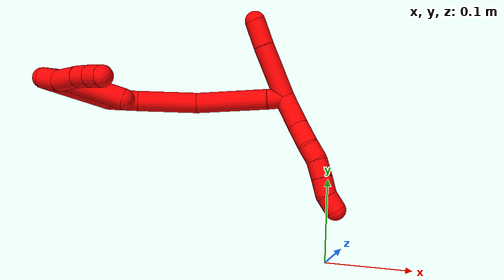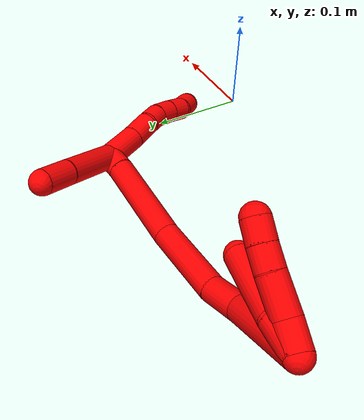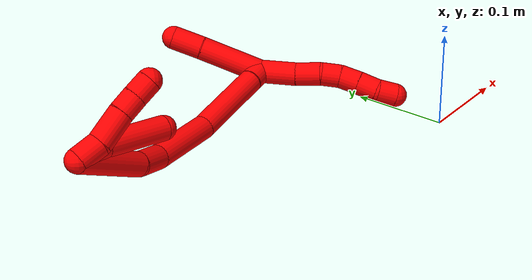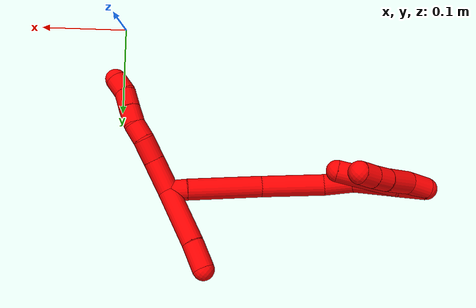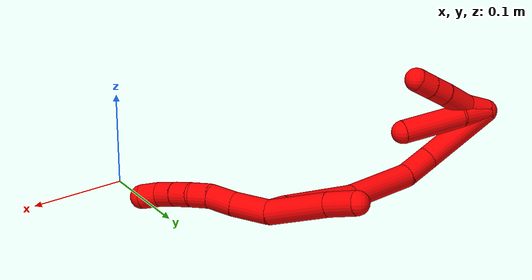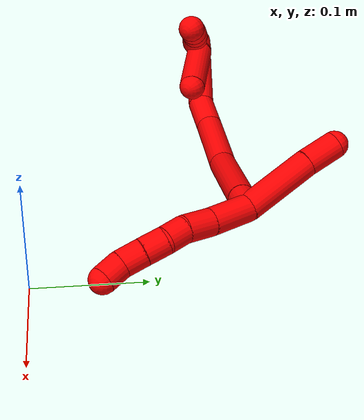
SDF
<sdf version="1.7">
 <world name="default">
  <model name="2">
   <static>0</static>
   <link name="2">
    <collision name="collision-cylinder-e_1_2_8">
     <pose>-0.006139 0.004583 -0.018216 -2.89512 -0.31589 1.81962</pose>
     <geometry><cylinder><radius>0.0125</radius><length>0.039522</length></cylinder></geometry>
     <surface>
      <friction><ode><mu>1.16</mu><mu2>1.16</mu2><slip1>0</slip1><slip2>0</slip2></ode></friction>
      <contact><ode><kp>1e+06</kp><kd>1</kd><max_vel>0</max_vel><min_depth>0.001</min_depth></ode></contact>
     </surface>
    </collision>
    <visual name="visual-cylinder-e_1_2_8">
     <pose>-0.006139 0.004583 -0.018216 -2.89512 -0.31589 1.81962</pose>
     <geometry><cylinder><radius>0.0125</radius><length>0.039522</length></cylinder></geometry>
     <material><ambient>1 0 0 1</ambient></material>
    </visual>
    <collision name="collision-cylinder-e_2_8_9">
     <pose>-0.01734 0.011184 -0.048871 -2.98071 -0.381958 2.35147</pose>
     <geometry><cylinder><radius>0.0125</radius><length>0.027163</length></cylinder></geometry>
     <surface>
      <friction><ode><mu>1.16</mu><mu2>1.16</mu2><slip1>0</slip1><slip2>0</slip2></ode></friction>
      <contact><ode><kp>1e+06</kp><kd>1</kd><max_vel>0</max_vel><min_depth>0.001</min_depth></ode></contact>
     </surface>
    </collision>
    <visual name="visual-cylinder-e_2_8_9">
     <pose>-0.01734 0.011184 -0.048871 -2.98071 -0.381958 2.35147</pose>
     <geometry><cylinder><radius>0.0125</radius><length>0.027163</length></cylinder></geometry>
     <material><ambient>1 0 0 1</ambient></material>
    </visual>
    <collision name="collision-cylinder-e_3_9_10">
     <pose>-0.024109 0.015788 -0.071044 -2.88204 -0.167821 1.14495</pose>
     <geometry><cylinder><radius>0.0125</radius><length>0.020426</length></cylinder></geometry>
     <surface>
      <friction><ode><mu>1.16</mu><mu2>1.16</mu2><slip1>0</slip1><slip2>0</slip2></ode></friction>
      <contact><ode><kp>1e+06</kp><kd>1</kd><max_vel>0</max_vel><min_depth>0.001</min_depth></ode></contact>
     </surface>
    </collision>
    <visual name="visual-cylinder-e_3_9_10">
     <pose>-0.024109 0.015788 -0.071044 -2.88204 -0.167821 1.14495</pose>
     <geometry><cylinder><radius>0.0125</radius><length>0.020426</length></cylinder></geometry>
     <material><ambient>1 0 0 1</ambient></material>
    </visual>
    <collision name="collision-cylinder-e_4_10_11">
     <pose>-0.028305 0.023386 -0.089693 -2.62938 -0.238748 0.859065</pose>
     <geometry><cylinder><radius>0.0125</radius><length>0.021058</length></cylinder></geometry>
     <surface>
      <friction><ode><mu>1.16</mu><mu2>1.16</mu2><slip1>0</slip1><slip2>0</slip2></ode></friction>
      <contact><ode><kp>1e+06</kp><kd>1</kd><max_vel>0</max_vel><min_depth>0.001</min_depth></ode></contact>
     </surface>
    </collision>
    <visual name="visual-cylinder-e_4_10_11">
     <pose>-0.028305 0.023386 -0.089693 -2.62938 -0.238748 0.859065</pose>
     <geometry><cylinder><radius>0.0125</radius><length>0.021058</length></cylinder></geometry>
     <material><ambient>1 0 0 1</ambient></material>
    </visual>
    <collision name="collision-cylinder-e_5_11_12">
     <pose>-0.033191 0.033938 -0.107368 -2.57771 -0.22729 0.750711</pose>
     <geometry><cylinder><radius>0.0125</radius><length>0.02127</length></cylinder></geometry>
     <surface>
      <friction><ode><mu>1.16</mu><mu2>1.16</mu2><slip1>0</slip1><slip2>0</slip2></ode></friction>
      <contact><ode><kp>1e+06</kp><kd>1</kd><max_vel>0</max_vel><min_depth>0.001</min_depth></ode></contact>
     </surface>
    </collision>
    <visual name="visual-cylinder-e_5_11_12">
     <pose>-0.033191 0.033938 -0.107368 -2.57771 -0.22729 0.750711</pose>
     <geometry><cylinder><radius>0.0125</radius><length>0.02127</length></cylinder></geometry>
     <material><ambient>1 0 0 1</ambient></material>
    </visual>
    <collision name="collision-cylinder-e_6_12_6">
     <pose>-0.035614 0.042862 -0.125832 -2.80595 -0.002583 0.015249</pose>
     <geometry><cylinder><radius>0.0125</radius><length>0.020561</length></cylinder></geometry>
     <surface>
      <friction><ode><mu>1.16</mu><mu2>1.16</mu2><slip1>0</slip1><slip2>0</slip2></ode></friction>
      <contact><ode><kp>1e+06</kp><kd>1</kd><max_vel>0</max_vel><min_depth>0.001</min_depth></ode></contact>
     </surface>
    </collision>
    <visual name="visual-cylinder-e_6_12_6">
     <pose>-0.035614 0.042862 -0.125832 -2.80595 -0.002583 0.015249</pose>
     <geometry><cylinder><radius>0.0125</radius><length>0.020561</length></cylinder></geometry>
     <material><ambient>1 0 0 1</ambient></material>
    </visual>
    <collision name="collision-cylinder-e_1_2_13">
     <pose>0.002562 -0.016148 0.029687 0.498183 0.075655 0.019253</pose>
     <geometry><cylinder><radius>0.0125</radius><length>0.067784</length></cylinder></geometry>
     <surface>
      <friction><ode><mu>1.16</mu><mu2>1.16</mu2><slip1>0</slip1><slip2>0</slip2></ode></friction>
      <contact><ode><kp>1e+06</kp><kd>1</kd><max_vel>0</max_vel><min_depth>0.001</min_depth></ode></contact>
     </surface>
    </collision>
    <visual name="visual-cylinder-e_1_2_13">
     <pose>0.002562 -0.016148 0.029687 0.498183 0.075655 0.019253</pose>
     <geometry><cylinder><radius>0.0125</radius><length>0.067784</length></cylinder></geometry>
     <material><ambient>1 0 0 1</ambient></material>
    </visual>
    <collision name="collision-cylinder-e_2_13_5">
     <pose>0.007592 -0.039866 0.073377 0.495562 0.153854 0.038994</pose>
     <geometry><cylinder><radius>0.0125</radius><length>0.032216</length></cylinder></geometry>
     <surface>
      <friction><ode><mu>1.16</mu><mu2>1.16</mu2><slip1>0</slip1><slip2>0</slip2></ode></friction>
      <contact><ode><kp>1e+06</kp><kd>1</kd><max_vel>0</max_vel><min_depth>0.001</min_depth></ode></contact>
     </surface>
    </collision>
    <visual name="visual-cylinder-e_2_13_5">
     <pose>0.007592 -0.039866 0.073377 0.495562 0.153854 0.038994</pose>
     <geometry><cylinder><radius>0.0125</radius><length>0.032216</length></cylinder></geometry>
     <material><ambient>1 0 0 1</ambient></material>
    </visual>
    <collision name="collision-cylinder-e_1_2_14">
     <pose>-0.005236 0.005671 0.007046 -0.677743 -0.524761 0.188764</pose>
     <geometry><cylinder><radius>0.0125</radius><length>0.020901</length></cylinder></geometry>
     <surface>
      <friction><ode><mu>1.16</mu><mu2>1.16</mu2><slip1>0</slip1><slip2>0</slip2></ode></friction>
      <contact><ode><kp>1e+06</kp><kd>1</kd><max_vel>0</max_vel><min_depth>0.001</min_depth></ode></contact>
     </surface>
    </collision>
    <visual name="visual-cylinder-e_1_2_14">
     <pose>-0.005236 0.005671 0.007046 -0.677743 -0.524761 0.188764</pose>
     <geometry><cylinder><radius>0.0125</radius><length>0.020901</length></cylinder></geometry>
     <material><ambient>1 0 0 1</ambient></material>
    </visual>
    <collision name="collision-cylinder-e_2_14_15">
     <pose>-0.028921 0.036188 0.045381 -0.671089 -0.432596 0.152958</pose>
     <geometry><cylinder><radius>0.0125</radius><length>0.088016</length></cylinder></geometry>
     <surface>
      <friction><ode><mu>1.16</mu><mu2>1.16</mu2><slip1>0</slip1><slip2>0</slip2></ode></friction>
      <contact><ode><kp>1e+06</kp><kd>1</kd><max_vel>0</max_vel><min_depth>0.001</min_depth></ode></contact>
     </surface>
    </collision>
    <visual name="visual-cylinder-e_2_14_15">
     <pose>-0.028921 0.036188 0.045381 -0.671089 -0.432596 0.152958</pose>
     <geometry><cylinder><radius>0.0125</radius><length>0.088016</length></cylinder></geometry>
     <material><ambient>1 0 0 1</ambient></material>
    </visual>
    <collision name="collision-cylinder-e_3_15_16">
     <pose>-0.067534 0.076394 0.103934 -0.513107 -0.572382 0.154088</pose>
     <geometry><cylinder><radius>0.0125</radius><length>0.074452</length></cylinder></geometry>
     <surface>
      <friction><ode><mu>1.16</mu><mu2>1.16</mu2><slip1>0</slip1><slip2>0</slip2></ode></friction>
      <contact><ode><kp>1e+06</kp><kd>1</kd><max_vel>0</max_vel><min_depth>0.001</min_depth></ode></contact>
     </surface>
    </collision>
    <visual name="visual-cylinder-e_3_15_16">
     <pose>-0.067534 0.076394 0.103934 -0.513107 -0.572382 0.154088</pose>
     <geometry><cylinder><radius>0.0125</radius><length>0.074452</length></cylinder></geometry>
     <material><ambient>1 0 0 1</ambient></material>
    </visual>
    <collision name="collision-cylinder-e_4_16_17">
     <pose>-0.100174 0.095825 0.142355 -0.349776 -0.810003 0.151208</pose>
     <geometry><cylinder><radius>0.0125</radius><length>0.034453</length></cylinder></geometry>
     <surface>
      <friction><ode><mu>1.16</mu><mu2>1.16</mu2><slip1>0</slip1><slip2>0</slip2></ode></friction>
      <contact><ode><kp>1e+06</kp><kd>1</kd><max_vel>0</max_vel><min_depth>0.001</min_depth></ode></contact>
     </surface>
    </collision>
    <visual name="visual-cylinder-e_4_16_17">
     <pose>-0.100174 0.095825 0.142355 -0.349776 -0.810003 0.151208</pose>
     <geometry><cylinder><radius>0.0125</radius><length>0.034453</length></cylinder></geometry>
     <material><ambient>1 0 0 1</ambient></material>
    </visual>
    <collision name="collision-cylinder-e_5_17_1">
     <pose>-0.140553 0.098528 0.183644 0.045348 -0.746516 -0.017762</pose>
     <geometry><cylinder><radius>0.0125</radius><length>0.082177</length></cylinder></geometry>
     <surface>
      <friction><ode><mu>1.16</mu><mu2>1.16</mu2><slip1>0</slip1><slip2>0</slip2></ode></friction>
      <contact><ode><kp>1e+06</kp><kd>1</kd><max_vel>0</max_vel><min_depth>0.001</min_depth></ode></contact>
     </surface>
    </collision>
    <visual name="visual-cylinder-e_5_17_1">
     <pose>-0.140553 0.098528 0.183644 0.045348 -0.746516 -0.017762</pose>
     <geometry><cylinder><radius>0.0125</radius><length>0.082177</length></cylinder></geometry>
     <material><ambient>1 0 0 1</ambient></material>
    </visual>
    <collision name="collision-cylinder-e_1_1_18">
     <pose>-0.161696 0.090486 0.200635 2.67153 0.43008 1.47896</pose>
     <geometry><cylinder><radius>0.0125</radius><length>0.032428</length></cylinder></geometry>
     <surface>
      <friction><ode><mu>1.16</mu><mu2>1.16</mu2><slip1>0</slip1><slip2>0</slip2></ode></friction>
      <contact><ode><kp>1e+06</kp><kd>1</kd><max_vel>0</max_vel><min_depth>0.001</min_depth></ode></contact>
     </surface>
    </collision>
    <visual name="visual-cylinder-e_1_1_18">
     <pose>-0.161696 0.090486 0.200635 2.67153 0.43008 1.47896</pose>
     <geometry><cylinder><radius>0.0125</radius><length>0.032428</length></cylinder></geometry>
     <material><ambient>1 0 0 1</ambient></material>
    </visual>
    <collision name="collision-cylinder-e_2_18_4">
     <pose>-0.14105 0.07661 0.157549 2.90564 0.423527 2.13386</pose>
     <geometry><cylinder><radius>0.0125</radius><length>0.067572</length></cylinder></geometry>
     <surface>
      <friction><ode><mu>1.16</mu><mu2>1.16</mu2><slip1>0</slip1><slip2>0</slip2></ode></friction>
      <contact><ode><kp>1e+06</kp><kd>1</kd><max_vel>0</max_vel><min_depth>0.001</min_depth></ode></contact>
     </surface>
    </collision>
    <visual name="visual-cylinder-e_2_18_4">
     <pose>-0.14105 0.07661 0.157549 2.90564 0.423527 2.13386</pose>
     <geometry><cylinder><radius>0.0125</radius><length>0.067572</length></cylinder></geometry>
     <material><ambient>1 0 0 1</ambient></material>
    </visual>
    <collision name="collision-cylinder-e_1_1_19">
     <pose>-0.1675 0.090423 0.203212 2.57377 0.076169 0.259693</pose>
     <geometry><cylinder><radius>0.0125</radius><length>0.02513</length></cylinder></geometry>
     <surface>
      <friction><ode><mu>1.16</mu><mu2>1.16</mu2><slip1>0</slip1><slip2>0</slip2></ode></friction>
      <contact><ode><kp>1e+06</kp><kd>1</kd><max_vel>0</max_vel><min_depth>0.001</min_depth></ode></contact>
     </surface>
    </collision>
    <visual name="visual-cylinder-e_1_1_19">
     <pose>-0.1675 0.090423 0.203212 2.57377 0.076169 0.259693</pose>
     <geometry><cylinder><radius>0.0125</radius><length>0.02513</length></cylinder></geometry>
     <material><ambient>1 0 0 1</ambient></material>
    </visual>
    <collision name="collision-cylinder-e_2_19_20">
     <pose>-0.166589 0.070608 0.181299 2.28564 -0.002634 -0.005774</pose>
     <geometry><cylinder><radius>0.0125</radius><length>0.034633</length></cylinder></geometry>
     <surface>
      <friction><ode><mu>1.16</mu><mu2>1.16</mu2><slip1>0</slip1><slip2>0</slip2></ode></friction>
      <contact><ode><kp>1e+06</kp><kd>1</kd><max_vel>0</max_vel><min_depth>0.001</min_depth></ode></contact>
     </surface>
    </collision>
    <visual name="visual-cylinder-e_2_19_20">
     <pose>-0.166589 0.070608 0.181299 2.28564 -0.002634 -0.005774</pose>
     <geometry><cylinder><radius>0.0125</radius><length>0.034633</length></cylinder></geometry>
     <material><ambient>1 0 0 1</ambient></material>
    </visual>
    <collision name="collision-cylinder-e_3_20_21">
     <pose>-0.166733 0.050559 0.162704 2.37532 -0.009799 -0.024311</pose>
     <geometry><cylinder><radius>0.0125</radius><length>0.020109</length></cylinder></geometry>
     <surface>
      <friction><ode><mu>1.16</mu><mu2>1.16</mu2><slip1>0</slip1><slip2>0</slip2></ode></friction>
      <contact><ode><kp>1e+06</kp><kd>1</kd><max_vel>0</max_vel><min_depth>0.001</min_depth></ode></contact>
     </surface>
    </collision>
    <visual name="visual-cylinder-e_3_20_21">
     <pose>-0.166733 0.050559 0.162704 2.37532 -0.009799 -0.024311</pose>
     <geometry><cylinder><radius>0.0125</radius><length>0.020109</length></cylinder></geometry>
     <material><ambient>1 0 0 1</ambient></material>
    </visual>
    <collision name="collision-cylinder-e_4_21_3">
     <pose>-0.167327 0.036816 0.14803 2.40259 -0.04926 -0.127045</pose>
     <geometry><cylinder><radius>0.0125</radius><length>0.020128</length></cylinder></geometry>
     <surface>
      <friction><ode><mu>1.16</mu><mu2>1.16</mu2><slip1>0</slip1><slip2>0</slip2></ode></friction>
      <contact><ode><kp>1e+06</kp><kd>1</kd><max_vel>0</max_vel><min_depth>0.001</min_depth></ode></contact>
     </surface>
    </collision>
    <visual name="visual-cylinder-e_4_21_3">
     <pose>-0.167327 0.036816 0.14803 2.40259 -0.04926 -0.127045</pose>
     <geometry><cylinder><radius>0.0125</radius><length>0.020128</length></cylinder></geometry>
     <material><ambient>1 0 0 1</ambient></material>
    </visual>
    <collision name="collision-sphere-3">
     <pose>-0.167823 0.030046 0.1406 0 -0 0</pose>
     <geometry><sphere><radius>0.0125</radius></sphere></geometry>
     <surface>
      <friction><ode><mu>1.16</mu><mu2>1.16</mu2><slip1>0</slip1><slip2>0</slip2></ode></friction>
      <contact><ode><kp>1e+06</kp><kd>1</kd><max_vel>0</max_vel><min_depth>0.001</min_depth></ode></contact>
     </surface>
    </collision>
    <visual name="visual-sphere-3">
     <pose>-0.167823 0.030046 0.1406 0 -0 0</pose>
     <geometry><sphere><radius>0.0125</radius></sphere></geometry>
     <material><ambient>1 0 0 1</ambient></material>
    </visual>
    <collision name="collision-sphere-21">
     <pose>-0.166832 0.043587 0.15546 0 -0 0</pose>
     <geometry><sphere><radius>0.0125</radius></sphere></geometry>
     <surface>
      <friction><ode><mu>1.16</mu><mu2>1.16</mu2><slip1>0</slip1><slip2>0</slip2></ode></friction>
      <contact><ode><kp>1e+06</kp><kd>1</kd><max_vel>0</max_vel><min_depth>0.001</min_depth></ode></contact>
     </surface>
    </collision>
    <visual name="visual-sphere-21">
     <pose>-0.166832 0.043587 0.15546 0 -0 0</pose>
     <geometry><sphere><radius>0.0125</radius></sphere></geometry>
     <material><ambient>1 0 0 1</ambient></material>
    </visual>
    <collision name="collision-sphere-20">
     <pose>-0.166635 0.057531 0.169948 0 -0 0</pose>
     <geometry><sphere><radius>0.0125</radius></sphere></geometry>
     <surface>
      <friction><ode><mu>1.16</mu><mu2>1.16</mu2><slip1>0</slip1><slip2>0</slip2></ode></friction>
      <contact><ode><kp>1e+06</kp><kd>1</kd><max_vel>0</max_vel><min_depth>0.001</min_depth></ode></contact>
     </surface>
    </collision>
    <visual name="visual-sphere-20">
     <pose>-0.166635 0.057531 0.169948 0 -0 0</pose>
     <geometry><sphere><radius>0.0125</radius></sphere></geometry>
     <material><ambient>1 0 0 1</ambient></material>
    </visual>
    <collision name="collision-sphere-19">
     <pose>-0.166544 0.083685 0.19265 0 -0 0</pose>
     <geometry><sphere><radius>0.0125</radius></sphere></geometry>
     <surface>
      <friction><ode><mu>1.16</mu><mu2>1.16</mu2><slip1>0</slip1><slip2>0</slip2></ode></friction>
      <contact><ode><kp>1e+06</kp><kd>1</kd><max_vel>0</max_vel><min_depth>0.001</min_depth></ode></contact>
     </surface>
    </collision>
    <visual name="visual-sphere-19">
     <pose>-0.166544 0.083685 0.19265 0 -0 0</pose>
     <geometry><sphere><radius>0.0125</radius></sphere></geometry>
     <material><ambient>1 0 0 1</ambient></material>
    </visual>
    <collision name="collision-sphere-12">
     <pose>-0.035587 0.039476 -0.116125 0 -0 0</pose>
     <geometry><sphere><radius>0.0125</radius></sphere></geometry>
     <surface>
      <friction><ode><mu>1.16</mu><mu2>1.16</mu2><slip1>0</slip1><slip2>0</slip2></ode></friction>
      <contact><ode><kp>1e+06</kp><kd>1</kd><max_vel>0</max_vel><min_depth>0.001</min_depth></ode></contact>
     </surface>
    </collision>
    <visual name="visual-sphere-12">
     <pose>-0.035587 0.039476 -0.116125 0 -0 0</pose>
     <geometry><sphere><radius>0.0125</radius></sphere></geometry>
     <material><ambient>1 0 0 1</ambient></material>
    </visual>
    <collision name="collision-sphere-11">
     <pose>-0.030795 0.0284 -0.098611 0 -0 0</pose>
     <geometry><sphere><radius>0.0125</radius></sphere></geometry>
     <surface>
      <friction><ode><mu>1.16</mu><mu2>1.16</mu2><slip1>0</slip1><slip2>0</slip2></ode></friction>
      <contact><ode><kp>1e+06</kp><kd>1</kd><max_vel>0</max_vel><min_depth>0.001</min_depth></ode></contact>
     </surface>
    </collision>
    <visual name="visual-sphere-11">
     <pose>-0.030795 0.0284 -0.098611 0 -0 0</pose>
     <geometry><sphere><radius>0.0125</radius></sphere></geometry>
     <material><ambient>1 0 0 1</ambient></material>
    </visual>
    <collision name="collision-sphere-10">
     <pose>-0.025815 0.018372 -0.080776 0 -0 0</pose>
     <geometry><sphere><radius>0.0125</radius></sphere></geometry>
     <surface>
      <friction><ode><mu>1.16</mu><mu2>1.16</mu2><slip1>0</slip1><slip2>0</slip2></ode></friction>
      <contact><ode><kp>1e+06</kp><kd>1</kd><max_vel>0</max_vel><min_depth>0.001</min_depth></ode></contact>
     </surface>
    </collision>
    <visual name="visual-sphere-10">
     <pose>-0.025815 0.018372 -0.080776 0 -0 0</pose>
     <geometry><sphere><radius>0.0125</radius></sphere></geometry>
     <material><ambient>1 0 0 1</ambient></material>
    </visual>
    <collision name="collision-sphere-9">
     <pose>-0.022403 0.013203 -0.061311 0 -0 0</pose>
     <geometry><sphere><radius>0.0125</radius></sphere></geometry>
     <surface>
      <friction><ode><mu>1.16</mu><mu2>1.16</mu2><slip1>0</slip1><slip2>0</slip2></ode></friction>
      <contact><ode><kp>1e+06</kp><kd>1</kd><max_vel>0</max_vel><min_depth>0.001</min_depth></ode></contact>
     </surface>
    </collision>
    <visual name="visual-sphere-9">
     <pose>-0.022403 0.013203 -0.061311 0 -0 0</pose>
     <geometry><sphere><radius>0.0125</radius></sphere></geometry>
     <material><ambient>1 0 0 1</ambient></material>
    </visual>
    <collision name="collision-sphere-2">
     <geometry><sphere><radius>0.0125</radius></sphere></geometry>
     <surface>
      <friction><ode><mu>1.16</mu><mu2>1.16</mu2><slip1>0</slip1><slip2>0</slip2></ode></friction>
      <contact><ode><kp>1e+06</kp><kd>1</kd><max_vel>0</max_vel><min_depth>0.001</min_depth></ode></contact>
     </surface>
    </collision>
    <visual name="visual-sphere-2">
     <geometry><sphere><radius>0.0125</radius></sphere></geometry>
     <material><ambient>1 0 0 1</ambient></material>
    </visual>
    <collision name="collision-sphere-8">
     <pose>-0.012278 0.009166 -0.036431 0 -0 0</pose>
     <geometry><sphere><radius>0.0125</radius></sphere></geometry>
     <surface>
      <friction><ode><mu>1.16</mu><mu2>1.16</mu2><slip1>0</slip1><slip2>0</slip2></ode></friction>
      <contact><ode><kp>1e+06</kp><kd>1</kd><max_vel>0</max_vel><min_depth>0.001</min_depth></ode></contact>
     </surface>
    </collision>
    <visual name="visual-sphere-8">
     <pose>-0.012278 0.009166 -0.036431 0 -0 0</pose>
     <geometry><sphere><radius>0.0125</radius></sphere></geometry>
     <material><ambient>1 0 0 1</ambient></material>
    </visual>
    <collision name="collision-sphere-6">
     <pose>-0.035641 0.046248 -0.135539 0 -0 0</pose>
     <geometry><sphere><radius>0.0125</radius></sphere></geometry>
     <surface>
      <friction><ode><mu>1.16</mu><mu2>1.16</mu2><slip1>0</slip1><slip2>0</slip2></ode></friction>
      <contact><ode><kp>1e+06</kp><kd>1</kd><max_vel>0</max_vel><min_depth>0.001</min_depth></ode></contact>
     </surface>
    </collision>
    <visual name="visual-sphere-6">
     <pose>-0.035641 0.046248 -0.135539 0 -0 0</pose>
     <geometry><sphere><radius>0.0125</radius></sphere></geometry>
     <material><ambient>1 0 0 1</ambient></material>
    </visual>
    <collision name="collision-sphere-13">
     <pose>0.005123 -0.032296 0.059374 0 -0 0</pose>
     <geometry><sphere><radius>0.0125</radius></sphere></geometry>
     <surface>
      <friction><ode><mu>1.16</mu><mu2>1.16</mu2><slip1>0</slip1><slip2>0</slip2></ode></friction>
      <contact><ode><kp>1e+06</kp><kd>1</kd><max_vel>0</max_vel><min_depth>0.001</min_depth></ode></contact>
     </surface>
    </collision>
    <visual name="visual-sphere-13">
     <pose>0.005123 -0.032296 0.059374 0 -0 0</pose>
     <geometry><sphere><radius>0.0125</radius></sphere></geometry>
     <material><ambient>1 0 0 1</ambient></material>
    </visual>
    <collision name="collision-sphere-5">
     <pose>0.01006 -0.047435 0.08738 0 -0 0</pose>
     <geometry><sphere><radius>0.0125</radius></sphere></geometry>
     <surface>
      <friction><ode><mu>1.16</mu><mu2>1.16</mu2><slip1>0</slip1><slip2>0</slip2></ode></friction>
      <contact><ode><kp>1e+06</kp><kd>1</kd><max_vel>0</max_vel><min_depth>0.001</min_depth></ode></contact>
     </surface>
    </collision>
    <visual name="visual-sphere-5">
     <pose>0.01006 -0.047435 0.08738 0 -0 0</pose>
     <geometry><sphere><radius>0.0125</radius></sphere></geometry>
     <material><ambient>1 0 0 1</ambient></material>
    </visual>
    <collision name="collision-sphere-14">
     <pose>-0.010472 0.011342 0.014091 0 -0 0</pose>
     <geometry><sphere><radius>0.0125</radius></sphere></geometry>
     <surface>
      <friction><ode><mu>1.16</mu><mu2>1.16</mu2><slip1>0</slip1><slip2>0</slip2></ode></friction>
      <contact><ode><kp>1e+06</kp><kd>1</kd><max_vel>0</max_vel><min_depth>0.001</min_depth></ode></contact>
     </surface>
    </collision>
    <visual name="visual-sphere-14">
     <pose>-0.010472 0.011342 0.014091 0 -0 0</pose>
     <geometry><sphere><radius>0.0125</radius></sphere></geometry>
     <material><ambient>1 0 0 1</ambient></material>
    </visual>
    <collision name="collision-sphere-15">
     <pose>-0.047371 0.061033 0.076671 0 -0 0</pose>
     <geometry><sphere><radius>0.0125</radius></sphere></geometry>
     <surface>
      <friction><ode><mu>1.16</mu><mu2>1.16</mu2><slip1>0</slip1><slip2>0</slip2></ode></friction>
      <contact><ode><kp>1e+06</kp><kd>1</kd><max_vel>0</max_vel><min_depth>0.001</min_depth></ode></contact>
     </surface>
    </collision>
    <visual name="visual-sphere-15">
     <pose>-0.047371 0.061033 0.076671 0 -0 0</pose>
     <geometry><sphere><radius>0.0125</radius></sphere></geometry>
     <material><ambient>1 0 0 1</ambient></material>
    </visual>
    <collision name="collision-sphere-16">
     <pose>-0.087696 0.091755 0.131197 0 -0 0</pose>
     <geometry><sphere><radius>0.0125</radius></sphere></geometry>
     <surface>
      <friction><ode><mu>1.16</mu><mu2>1.16</mu2><slip1>0</slip1><slip2>0</slip2></ode></friction>
      <contact><ode><kp>1e+06</kp><kd>1</kd><max_vel>0</max_vel><min_depth>0.001</min_depth></ode></contact>
     </surface>
    </collision>
    <visual name="visual-sphere-16">
     <pose>-0.087696 0.091755 0.131197 0 -0 0</pose>
     <geometry><sphere><radius>0.0125</radius></sphere></geometry>
     <material><ambient>1 0 0 1</ambient></material>
    </visual>
    <collision name="collision-sphere-17">
     <pose>-0.112651 0.099895 0.153514 0 -0 0</pose>
     <geometry><sphere><radius>0.0125</radius></sphere></geometry>
     <surface>
      <friction><ode><mu>1.16</mu><mu2>1.16</mu2><slip1>0</slip1><slip2>0</slip2></ode></friction>
      <contact><ode><kp>1e+06</kp><kd>1</kd><max_vel>0</max_vel><min_depth>0.001</min_depth></ode></contact>
     </surface>
    </collision>
    <visual name="visual-sphere-17">
     <pose>-0.112651 0.099895 0.153514 0 -0 0</pose>
     <geometry><sphere><radius>0.0125</radius></sphere></geometry>
     <material><ambient>1 0 0 1</ambient></material>
    </visual>
    <collision name="collision-sphere-1">
     <pose>-0.168456 0.097161 0.213775 0 -0 0</pose>
     <geometry><sphere><radius>0.0125</radius></sphere></geometry>
     <surface>
      <friction><ode><mu>1.16</mu><mu2>1.16</mu2><slip1>0</slip1><slip2>0</slip2></ode></friction>
      <contact><ode><kp>1e+06</kp><kd>1</kd><max_vel>0</max_vel><min_depth>0.001</min_depth></ode></contact>
     </surface>
    </collision>
    <visual name="visual-sphere-1">
     <pose>-0.168456 0.097161 0.213775 0 -0 0</pose>
     <geometry><sphere><radius>0.0125</radius></sphere></geometry>
     <material><ambient>1 0 0 1</ambient></material>
    </visual>
    <collision name="collision-sphere-18">
     <pose>-0.154935 0.08381 0.187496 0 -0 0</pose>
     <geometry><sphere><radius>0.0125</radius></sphere></geometry>
     <surface>
      <friction><ode><mu>1.16</mu><mu2>1.16</mu2><slip1>0</slip1><slip2>0</slip2></ode></friction>
      <contact><ode><kp>1e+06</kp><kd>1</kd><max_vel>0</max_vel><min_depth>0.001</min_depth></ode></contact>
     </surface>
    </collision>
    <visual name="visual-sphere-18">
     <pose>-0.154935 0.08381 0.187496 0 -0 0</pose>
     <geometry><sphere><radius>0.0125</radius></sphere></geometry>
     <material><ambient>1 0 0 1</ambient></material>
    </visual>
    <collision name="collision-sphere-4">
     <pose>-0.127165 0.06941 0.127602 0 -0 0</pose>
     <geometry><sphere><radius>0.0125</radius></sphere></geometry>
     <surface>
      <friction><ode><mu>1.16</mu><mu2>1.16</mu2><slip1>0</slip1><slip2>0</slip2></ode></friction>
      <contact><ode><kp>1e+06</kp><kd>1</kd><max_vel>0</max_vel><min_depth>0.001</min_depth></ode></contact>
     </surface>
    </collision>
    <visual name="visual-sphere-4">
     <pose>-0.127165 0.06941 0.127602 0 -0 0</pose>
     <geometry><sphere><radius>0.0125</radius></sphere></geometry>
     <material><ambient>1 0 0 1</ambient></material>
    </visual>
    <inertial>
     <pose>-0.075974 0.047333 0.081044 0 -0 0</pose>
     <mass>0.75</mass>
     <inertia>
      <ixx>0.000195</ixx>
      <ixy>0</ixy>
      <ixz>0</ixz>
      <iyy>0.000229</iyy>
      <iyz>0</iyz>
      <izz>4.8e-05</izz>
     </inertia>
    </inertial>
   </link>
   <pose>-0.060709 0.190141 0.029012 -1.5431 0.649817 0.902084</pose>
  </model>
 </world>
</sdf>
